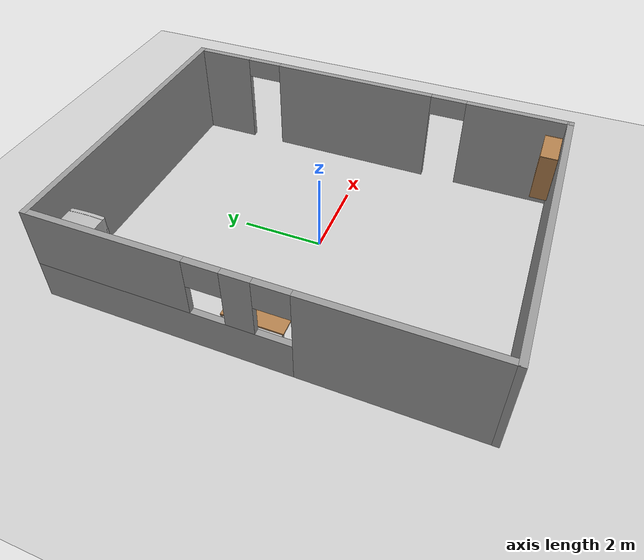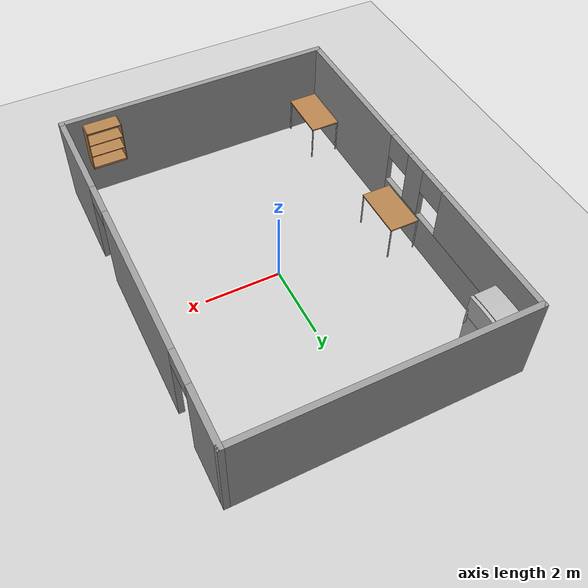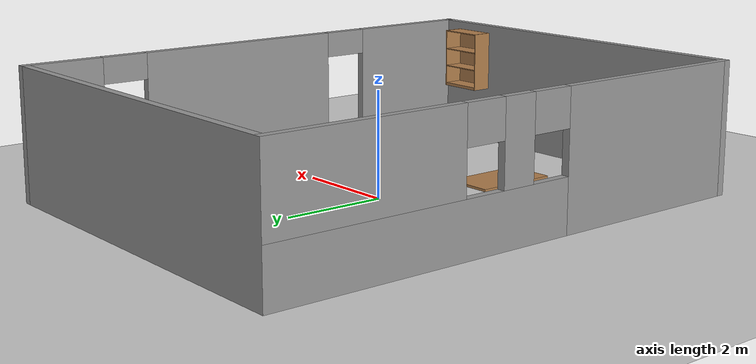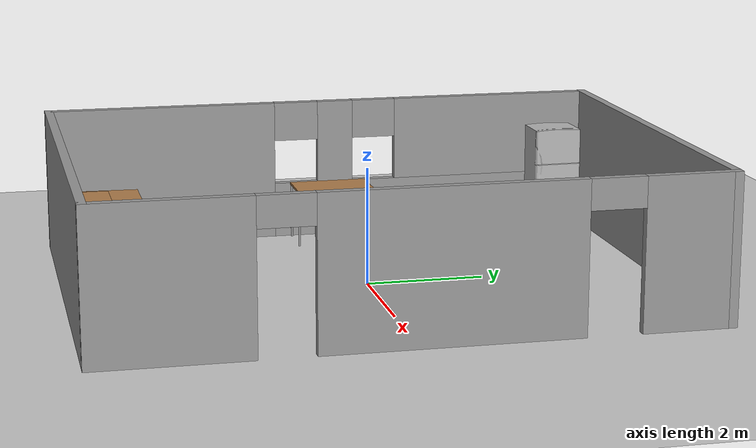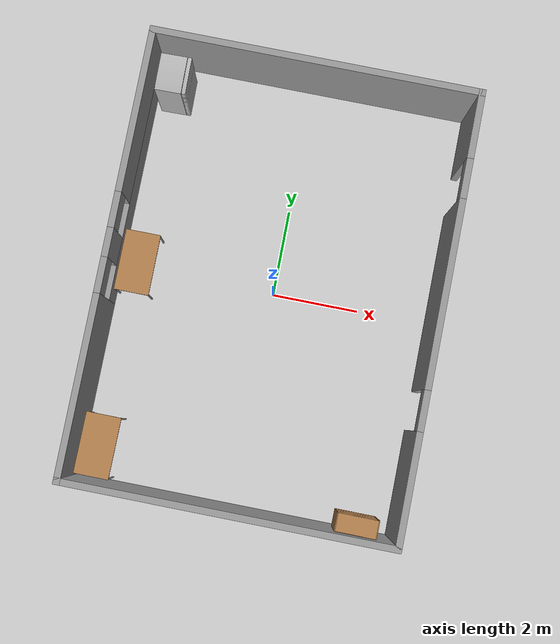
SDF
<sdf version="1.6">
 <world name="default">
  <light name="sun" type="directional">
   <pose>0 0 10 0 -0 0</pose>
   <diffuse>0.8 0.8 0.8 1</diffuse>
   <specular>0.1 0.1 0.1 1</specular>
   <attenuation>
    <range>1000</range>
    <constant>0.9</constant>
    <linear>0.01</linear>
    <quadratic>0.001</quadratic>
   </attenuation>
   <direction>-0.5 0.5 -1</direction>
  </light>
  <model name="ground_plane">
   <static>1</static>
   <link name="link">
    <collision name="collision">
     <geometry><plane><normal>0 0 1</normal><size>100 100</size></plane></geometry>
     <surface><friction><ode><mu>100</mu><mu2>50</mu2></ode></friction></surface>
    </collision>
    <visual name="visual">
     <cast_shadows>0</cast_shadows>
     <geometry><plane><normal>0 0 1</normal><size>100 100</size></plane></geometry>
     <material>
      <script><uri>file://media/materials/scripts/gazebo.material</uri><name>Gazebo/Grey</name></script>
     </material>
    </visual>
   </link>
  </model>
  <gravity>0 0 -9.8</gravity>
  <magnetic_field>6e-06 2.3e-05 -4.2e-05</magnetic_field>
  <atmosphere type="adiabatic"/>
  <physics name="default_physics" default="0" type="ode">
   <max_step_size>0.001</max_step_size>
   <real_time_factor>1</real_time_factor>
   <real_time_update_rate>1000</real_time_update_rate>
  </physics>
  <scene><ambient>0.4 0.4 0.4 1</ambient><background>0.7 0.7 0.7 1</background><shadows>1</shadows></scene>
  <spherical_coordinates>
   <surface_model>EARTH_WGS84</surface_model>
   <latitude_deg>0</latitude_deg>
   <longitude_deg>0</longitude_deg>
   <elevation>0</elevation>
   <heading_deg>0</heading_deg>
  </spherical_coordinates>
  <model name="kitchen_1">
   <link name="Wall_0">
    <pose>-3.675 0 0 0 -0 1.5708</pose>
    <visual name="Wall_0_Visual_0">
     <pose>-3.0016 0 1.25 0 -0 0</pose>
     <geometry><box><size>4.14681 0.15 2.5</size></box></geometry>
     <material>
      <script><uri>file://media/materials/scripts/gazebo.material</uri><name>Gazebo/Grey</name></script>
      <ambient>1 1 1 1</ambient>
     </material>
    </visual>
    <collision name="Wall_0_Collision_0">
     <geometry><box><size>4.14681 0.15 2.5</size></box></geometry>
     <pose>-3.0016 0 1.25 0 -0 0</pose>
    </collision>
    <visual name="Wall_0_Visual_1">
     <pose>2.0734 0 0.5 0 -0 0</pose>
     <geometry><box><size>6.00319 0.15 1</size></box></geometry>
     <material>
      <script><uri>file://media/materials/scripts/gazebo.material</uri><name>Gazebo/Grey</name></script>
      <ambient>1 1 1 1</ambient>
     </material>
    </visual>
    <collision name="Wall_0_Collision_1">
     <geometry><box><size>6.00319 0.15 1</size></box></geometry>
     <pose>2.0734 0 0.5 0 -0 0</pose>
    </collision>
    <visual name="Wall_0_Visual_2">
     <pose>0.197646 0 1.75 0 -0 0</pose>
     <geometry><box><size>0.651675 0.15 1.5</size></box></geometry>
     <material>
      <script><uri>file://media/materials/scripts/gazebo.material</uri><name>Gazebo/Grey</name></script>
      <ambient>1 1 1 1</ambient>
     </material>
    </visual>
    <collision name="Wall_0_Collision_2">
     <geometry><box><size>0.651675 0.15 1.5</size></box></geometry>
     <pose>0.197646 0 1.75 0 -0 0</pose>
    </collision>
    <visual name="Wall_0_Visual_3">
     <pose>3.19924 0 1.75 0 -0 0</pose>
     <geometry><box><size>3.75152 0.15 1.5</size></box></geometry>
     <material>
      <script><uri>file://media/materials/scripts/gazebo.material</uri><name>Gazebo/Grey</name></script>
      <ambient>1 1 1 1</ambient>
     </material>
    </visual>
    <collision name="Wall_0_Collision_3">
     <geometry><box><size>3.75152 0.15 1.5</size></box></geometry>
     <pose>3.19924 0 1.75 0 -0 0</pose>
    </collision>
    <visual name="Wall_0_Visual_4">
     <pose>-0.528191 0 2.15 0 -0 0</pose>
     <geometry><box><size>0.8 0.15 0.7</size></box></geometry>
     <material>
      <script><uri>file://media/materials/scripts/gazebo.material</uri><name>Gazebo/Grey</name></script>
      <ambient>1 1 1 1</ambient>
     </material>
    </visual>
    <collision name="Wall_0_Collision_4">
     <geometry><box><size>0.8 0.15 0.7</size></box></geometry>
     <pose>-0.528191 0 2.15 0 -0 0</pose>
    </collision>
    <visual name="Wall_0_Visual_5">
     <pose>0.923484 0 2.15 0 -0 0</pose>
     <geometry><box><size>0.8 0.15 0.7</size></box></geometry>
     <material>
      <script><uri>file://media/materials/scripts/gazebo.material</uri><name>Gazebo/Grey</name></script>
      <ambient>1 1 1 1</ambient>
     </material>
    </visual>
    <collision name="Wall_0_Collision_5">
     <geometry><box><size>0.8 0.15 0.7</size></box></geometry>
     <pose>0.923484 0 2.15 0 -0 0</pose>
    </collision>
   </link>
   <link name="Wall_5">
    <collision name="Wall_5_Collision">
     <geometry><box><size>7.5 0.15 2.5</size></box></geometry>
     <pose>0 0 1.25 0 -0 0</pose>
    </collision>
    <visual name="Wall_5_Visual">
     <pose>0 0 1.25 0 -0 0</pose>
     <geometry><box><size>7.5 0.15 2.5</size></box></geometry>
     <material>
      <script><uri>file://media/materials/scripts/gazebo.material</uri><name>Gazebo/Grey</name></script>
      <ambient>1 1 1 1</ambient>
     </material>
    </visual>
    <pose>0 -5 0 0 -0 0</pose>
   </link>
   <link name="Wall_6">
    <pose>3.675 0 0 0 -0 1.5708</pose>
    <visual name="Wall_6_Visual_0">
     <pose>-3.78449 0 1.25 0 -0 0</pose>
     <geometry><box><size>2.58102 0.15 2.5</size></box></geometry>
     <material>
      <script><uri>file://media/materials/scripts/gazebo.material</uri><name>Gazebo/Grey</name></script>
      <ambient>1 1 1 1</ambient>
     </material>
    </visual>
    <collision name="Wall_6_Collision_0">
     <geometry><box><size>2.58102 0.15 2.5</size></box></geometry>
     <pose>-3.78449 0 1.25 0 -0 0</pose>
    </collision>
    <visual name="Wall_6_Visual_1">
     <pose>0.5103 0 1.25 0 -0 0</pose>
     <geometry><box><size>4.20857 0.15 2.5</size></box></geometry>
     <material>
      <script><uri>file://media/materials/scripts/gazebo.material</uri><name>Gazebo/Grey</name></script>
      <ambient>1 1 1 1</ambient>
     </material>
    </visual>
    <collision name="Wall_6_Collision_1">
     <geometry><box><size>4.20857 0.15 2.5</size></box></geometry>
     <pose>0.5103 0 1.25 0 -0 0</pose>
    </collision>
    <visual name="Wall_6_Visual_2">
     <pose>4.29479 0 1.25 0 -0 0</pose>
     <geometry><box><size>1.56042 0.15 2.5</size></box></geometry>
     <material>
      <script><uri>file://media/materials/scripts/gazebo.material</uri><name>Gazebo/Grey</name></script>
      <ambient>1 1 1 1</ambient>
     </material>
    </visual>
    <collision name="Wall_6_Collision_2">
     <geometry><box><size>1.56042 0.15 2.5</size></box></geometry>
     <pose>4.29479 0 1.25 0 -0 0</pose>
    </collision>
    <visual name="Wall_6_Visual_3">
     <pose>-2.04398 0 2.25 0 -0 0</pose>
     <geometry><box><size>0.9 0.15 0.5</size></box></geometry>
     <material>
      <script><uri>file://media/materials/scripts/gazebo.material</uri><name>Gazebo/Grey</name></script>
      <ambient>1 1 1 1</ambient>
     </material>
    </visual>
    <collision name="Wall_6_Collision_3">
     <geometry><box><size>0.9 0.15 0.5</size></box></geometry>
     <pose>-2.04398 0 2.25 0 -0 0</pose>
    </collision>
    <visual name="Wall_6_Visual_4">
     <pose>3.06458 0 2.25 0 -0 0</pose>
     <geometry><box><size>0.9 0.15 0.5</size></box></geometry>
     <material>
      <script><uri>file://media/materials/scripts/gazebo.material</uri><name>Gazebo/Grey</name></script>
      <ambient>1 1 1 1</ambient>
     </material>
    </visual>
    <collision name="Wall_6_Collision_4">
     <geometry><box><size>0.9 0.15 0.5</size></box></geometry>
     <pose>3.06458 0 2.25 0 -0 0</pose>
    </collision>
   </link>
   <link name="Wall_7">
    <collision name="Wall_7_Collision">
     <geometry><box><size>7.5 0.15 2.5</size></box></geometry>
     <pose>0 0 1.25 0 -0 0</pose>
    </collision>
    <visual name="Wall_7_Visual">
     <pose>0 0 1.25 0 -0 0</pose>
     <geometry><box><size>7.5 0.15 2.5</size></box></geometry>
     <material>
      <script><uri>file://media/materials/scripts/gazebo.material</uri><name>Gazebo/Grey</name></script>
      <ambient>1 1 1 1</ambient>
     </material>
    </visual>
    <pose>0 5 0 0 -0 3.14159</pose>
   </link>
   <static>1</static>
  </model>
  <model name="table">
   <static>0</static>
   <link name="link">
    <collision name="surface">
     <pose>0 0 1 0 -0 0</pose>
     <geometry><box><size>1.5 0.8 0.03</size></box></geometry>
     <surface><friction><ode><mu>0.6</mu><mu2>0.6</mu2></ode></friction></surface>
    </collision>
    <visual name="visual1">
     <pose>0 0 1 0 -0 0</pose>
     <geometry><box><size>1.4 0.8 0.04</size></box></geometry>
     <material>
      <script><uri>file://media/materials/scripts/gazebo.material</uri><name>Gazebo/Wood</name></script>
     </material>
    </visual>
    <collision name="front_left_leg">
     <pose>0.68 0.38 0.5 0 -0 0</pose>
     <geometry><cylinder><radius>0.02</radius><length>1</length></cylinder></geometry>
    </collision>
    <visual name="front_left_leg">
     <pose>0.68 0.38 0.5 0 -0 0</pose>
     <geometry><cylinder><radius>0.02</radius><length>1</length></cylinder></geometry>
     <material>
      <script><uri>file://media/materials/scripts/gazebo.material</uri><name>Gazebo/Grey</name></script>
     </material>
    </visual>
    <collision name="front_right_leg">
     <pose>0.68 -0.38 0.5 0 -0 0</pose>
     <geometry><cylinder><radius>0.02</radius><length>1</length></cylinder></geometry>
    </collision>
    <visual name="front_right_leg">
     <pose>0.68 -0.38 0.5 0 -0 0</pose>
     <geometry><cylinder><radius>0.02</radius><length>1</length></cylinder></geometry>
     <material>
      <script><uri>file://media/materials/scripts/gazebo.material</uri><name>Gazebo/Grey</name></script>
     </material>
    </visual>
    <collision name="back_right_leg">
     <pose>-0.68 -0.38 0.5 0 -0 0</pose>
     <geometry><cylinder><radius>0.02</radius><length>1</length></cylinder></geometry>
    </collision>
    <visual name="back_right_leg">
     <pose>-0.68 -0.38 0.5 0 -0 0</pose>
     <geometry><cylinder><radius>0.02</radius><length>1</length></cylinder></geometry>
     <material>
      <script><uri>file://media/materials/scripts/gazebo.material</uri><name>Gazebo/Grey</name></script>
     </material>
    </visual>
    <collision name="back_left_leg">
     <pose>-0.68 0.38 0.5 0 -0 0</pose>
     <geometry><cylinder><radius>0.02</radius><length>1</length></cylinder></geometry>
    </collision>
    <visual name="back_left_leg">
     <pose>-0.68 0.38 0.5 0 -0 0</pose>
     <geometry><cylinder><radius>0.02</radius><length>1</length></cylinder></geometry>
     <material>
      <script><uri>file://media/materials/scripts/gazebo.material</uri><name>Gazebo/Grey</name></script>
     </material>
    </visual>
    <inertial>
     <inertia><ixx>1</ixx><ixy>0</ixy><ixz>0</ixz><iyy>1</iyy><iyz>0</iyz><izz>1</izz></inertia>
     <mass>1</mass>
    </inertial>
   </link>
   <pose>-3.18089 -4.18021 0.005225 7.8e-05 -0.007421 -1.57614</pose>
  </model>
  <model name="table_clone">
   <static>0</static>
   <link name="link">
    <collision name="surface">
     <pose>0 0 1 0 -0 0</pose>
     <geometry><box><size>1.5 0.8 0.03</size></box></geometry>
     <surface><friction><ode><mu>0.6</mu><mu2>0.6</mu2></ode></friction></surface>
    </collision>
    <visual name="visual1">
     <pose>0 0 1 0 -0 0</pose>
     <geometry><box><size>1.4 0.8 0.04</size></box></geometry>
     <material>
      <script><uri>file://media/materials/scripts/gazebo.material</uri><name>Gazebo/Wood</name></script>
     </material>
    </visual>
    <collision name="front_left_leg">
     <pose>0.68 0.38 0.5 0 -0 0</pose>
     <geometry><cylinder><radius>0.02</radius><length>1</length></cylinder></geometry>
    </collision>
    <visual name="front_left_leg">
     <pose>0.68 0.38 0.5 0 -0 0</pose>
     <geometry><cylinder><radius>0.02</radius><length>1</length></cylinder></geometry>
     <material>
      <script><uri>file://media/materials/scripts/gazebo.material</uri><name>Gazebo/Grey</name></script>
     </material>
    </visual>
    <collision name="front_right_leg">
     <pose>0.68 -0.38 0.5 0 -0 0</pose>
     <geometry><cylinder><radius>0.02</radius><length>1</length></cylinder></geometry>
    </collision>
    <visual name="front_right_leg">
     <pose>0.68 -0.38 0.5 0 -0 0</pose>
     <geometry><cylinder><radius>0.02</radius><length>1</length></cylinder></geometry>
     <material>
      <script><uri>file://media/materials/scripts/gazebo.material</uri><name>Gazebo/Grey</name></script>
     </material>
    </visual>
    <collision name="back_right_leg">
     <pose>-0.68 -0.38 0.5 0 -0 0</pose>
     <geometry><cylinder><radius>0.02</radius><length>1</length></cylinder></geometry>
    </collision>
    <visual name="back_right_leg">
     <pose>-0.68 -0.38 0.5 0 -0 0</pose>
     <geometry><cylinder><radius>0.02</radius><length>1</length></cylinder></geometry>
     <material>
      <script><uri>file://media/materials/scripts/gazebo.material</uri><name>Gazebo/Grey</name></script>
     </material>
    </visual>
    <collision name="back_left_leg">
     <pose>-0.68 0.38 0.5 0 -0 0</pose>
     <geometry><cylinder><radius>0.02</radius><length>1</length></cylinder></geometry>
    </collision>
    <visual name="back_left_leg">
     <pose>-0.68 0.38 0.5 0 -0 0</pose>
     <geometry><cylinder><radius>0.02</radius><length>1</length></cylinder></geometry>
     <material>
      <script><uri>file://media/materials/scripts/gazebo.material</uri><name>Gazebo/Grey</name></script>
     </material>
    </visual>
    <inertial>
     <inertia><ixx>1</ixx><ixy>0</ixy><ixz>0</ixz><iyy>1</iyy><iyz>0</iyz><izz>1</izz></inertia>
     <mass>1</mass>
    </inertial>
   </link>
   <pose>-3.1515 0.044565 -9e-06 0 -1e-06 -1.56956</pose>
  </model>
  <model name="Fridge">
   <pose>-2.74452 3.8282 0 0 -0 1.58733</pose>
   <static>1</static>
   <link name="base">
    <visual name="visual">
     <geometry><mesh><uri>model://fridge/model.dae</uri><scale>1 1 1</scale></mesh></geometry>
    </visual>
    <collision name="collision">
     <geometry><mesh><uri>model://fridge/model.dae</uri><scale>1 1 1</scale></mesh></geometry>
    </collision>
   </link>
  </model>
  <model name="bookshelf">
   <static>1</static>
   <link name="link">
    <inertial><mass>1</mass></inertial>
    <collision name="back">
     <pose>0 0.005 0.6 0 -0 0</pose>
     <geometry><box><size>0.9 0.01 1.2</size></box></geometry>
    </collision>
    <visual name="visual1">
     <pose>0 0.005 0.6 0 -0 0</pose>
     <geometry><box><size>0.9 0.01 1.2</size></box></geometry>
     <material>
      <script><uri>file://media/materials/scripts/gazebo.material</uri><name>Gazebo/Wood</name></script>
     </material>
    </visual>
    <collision name="left_side">
     <pose>0.45 -0.195 0.6 0 -0 0</pose>
     <geometry><box><size>0.02 0.4 1.2</size></box></geometry>
    </collision>
    <visual name="visual2">
     <pose>0.45 -0.195 0.6 0 -0 0</pose>
     <geometry><box><size>0.02 0.4 1.2</size></box></geometry>
     <material>
      <script><uri>file://media/materials/scripts/gazebo.material</uri><name>Gazebo/Wood</name></script>
     </material>
    </visual>
    <collision name="right_side">
     <pose>-0.45 -0.195 0.6 0 -0 0</pose>
     <geometry><box><size>0.02 0.4 1.2</size></box></geometry>
    </collision>
    <visual name="visual3">
     <pose>-0.45 -0.195 0.6 0 -0 0</pose>
     <geometry><box><size>0.02 0.4 1.2</size></box></geometry>
     <material>
      <script><uri>file://media/materials/scripts/gazebo.material</uri><name>Gazebo/Wood</name></script>
     </material>
    </visual>
    <collision name="bottom">
     <pose>0 -0.195 0.03 0 -0 0</pose>
     <geometry><box><size>0.88 0.4 0.06</size></box></geometry>
    </collision>
    <visual name="visual4">
     <pose>0 -0.195 0.03 0 -0 0</pose>
     <geometry><box><size>0.88 0.4 0.06</size></box></geometry>
     <material>
      <script><uri>file://media/materials/scripts/gazebo.material</uri><name>Gazebo/Wood</name></script>
     </material>
    </visual>
    <collision name="top">
     <pose>0 -0.195 1.19 0 -0 0</pose>
     <geometry><box><size>0.88 0.4 0.02</size></box></geometry>
    </collision>
    <visual name="visual5">
     <pose>0 -0.195 1.19 0 -0 0</pose>
     <geometry><box><size>0.88 0.4 0.02</size></box></geometry>
     <material>
      <script><uri>file://media/materials/scripts/gazebo.material</uri><name>Gazebo/Wood</name></script>
     </material>
    </visual>
    <collision name="low_shelf">
     <pose>0 -0.195 0.43 0 -0 0</pose>
     <geometry><box><size>0.88 0.4 0.02</size></box></geometry>
    </collision>
    <visual name="visual6">
     <pose>0 -0.195 0.43 0 -0 0</pose>
     <geometry><box><size>0.88 0.4 0.02</size></box></geometry>
     <material>
      <script><uri>file://media/materials/scripts/gazebo.material</uri><name>Gazebo/Wood</name></script>
     </material>
    </visual>
    <collision name="high_shelf">
     <pose>0 -0.195 0.8 0 -0 0</pose>
     <geometry><box><size>0.88 0.4 0.02</size></box></geometry>
    </collision>
    <visual name="visual7">
     <pose>0 -0.195 0.8 0 -0 0</pose>
     <geometry><box><size>0.88 0.4 0.02</size></box></geometry>
     <material>
      <script><uri>file://media/materials/scripts/gazebo.material</uri><name>Gazebo/Wood</name></script>
     </material>
    </visual>
   </link>
   <pose>2.74054 -4.89187 1.1485 0 -0 3.13735</pose>
  </model>
 </world>
</sdf>
